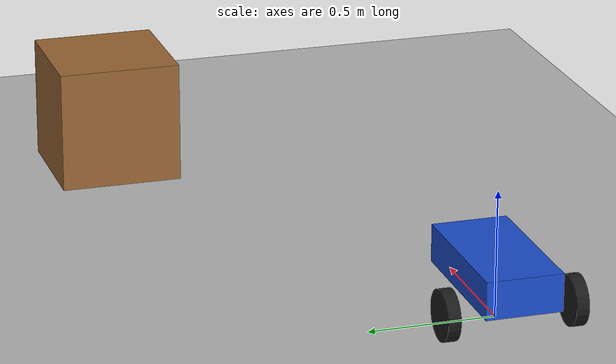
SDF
<?xml version="1.0"?>
<sdf version="1.9">
  <world name="depot">
    <physics name="default_physics" type="ode">
      <max_step_size>0.004</max_step_size>
      <real_time_factor>1.0</real_time_factor>
    </physics>
    <plugin filename="gz-sim-physics-system" name="gz::sim::systems::Physics"/>
    <plugin filename="gz-sim-user-commands-system" name="gz::sim::systems::UserCommands"/>
    <plugin filename="gz-sim-scene-broadcaster-system" name="gz::sim::systems::SceneBroadcaster"/>

    <light type="directional" name="sun">
      <cast_shadows>true</cast_shadows>
      <pose>0 0 10 0 0 0</pose>
      <diffuse>0.8 0.8 0.8 1</diffuse>
      <direction>-0.5 0.1 -0.9</direction>
    </light>

    <model name="ground_plane">
      <static>true</static>
      <link name="link">
        <collision name="collision">
          <geometry><plane><normal>0 0 1</normal><size>100 100</size></plane></geometry>
        </collision>
        <visual name="visual">
          <geometry><plane><normal>0 0 1</normal><size>100 100</size></plane></geometry>
          <material><ambient>0.7 0.7 0.7 1</ambient><diffuse>0.7 0.7 0.7 1</diffuse></material>
        </visual>
      </link>
    </model>

    <model name="crate">
      <static>true</static>
      <pose>2.0 1.0 0.25 0 0 0</pose>
      <link name="link">
        <collision name="collision">
          <geometry><box><size>0.5 0.5 0.5</size></box></geometry>
        </collision>
        <visual name="visual">
          <geometry><box><size>0.5 0.5 0.5</size></box></geometry>
          <material><ambient>0.6 0.4 0.2 1</ambient><diffuse>0.6 0.4 0.2 1</diffuse></material>
        </visual>
      </link>
    </model>

    <model name="ars_bot">
      <pose>0 0 0 0 0 0</pose>

      <link name="base_link">
        <pose>0 0 0.2 0 0 0</pose>
        <inertial>
          <mass>5.0</mass>
          <inertia>
            <ixx>0.05</ixx><iyy>0.12</iyy><izz>0.15</izz>
            <ixy>0</ixy><ixz>0</ixz><iyz>0</iyz>
          </inertia>
        </inertial>
        <collision name="collision">
          <geometry><box><size>0.6 0.3 0.15</size></box></geometry>
        </collision>
        <visual name="visual">
          <geometry><box><size>0.6 0.3 0.15</size></box></geometry>
          <material><ambient>0.1 0.3 0.8 1</ambient><diffuse>0.1 0.3 0.8 1</diffuse></material>
        </visual>
      </link>

      <link name="left_wheel">
        <pose>-0.15 0.25 0.1 -1.5707 0 0</pose>
        <inertial>
          <mass>0.5</mass>
          <inertia>
            <ixx>0.002</ixx><iyy>0.002</iyy><izz>0.0025</izz>
            <ixy>0</ixy><ixz>0</ixz><iyz>0</iyz>
          </inertia>
        </inertial>
        <collision name="collision">
          <geometry><cylinder><radius>0.1</radius><length>0.05</length></cylinder></geometry>
        </collision>
        <visual name="visual">
          <geometry><cylinder><radius>0.1</radius><length>0.05</length></cylinder></geometry>
          <material><ambient>0.1 0.1 0.1 1</ambient><diffuse>0.1 0.1 0.1 1</diffuse></material>
        </visual>
      </link>

      <link name="right_wheel">
        <pose>-0.15 -0.25 0.1 -1.5707 0 0</pose>
        <inertial>
          <mass>0.5</mass>
          <inertia>
            <ixx>0.002</ixx><iyy>0.002</iyy><izz>0.0025</izz>
            <ixy>0</ixy><ixz>0</ixz><iyz>0</iyz>
          </inertia>
        </inertial>
        <collision name="collision">
          <geometry><cylinder><radius>0.1</radius><length>0.05</length></cylinder></geometry>
        </collision>
        <visual name="visual">
          <geometry><cylinder><radius>0.1</radius><length>0.05</length></cylinder></geometry>
          <material><ambient>0.1 0.1 0.1 1</ambient><diffuse>0.1 0.1 0.1 1</diffuse></material>
        </visual>
      </link>

      <link name="caster">
        <pose>0.2 0 0.05 0 0 0</pose>
        <inertial>
          <mass>0.2</mass>
          <inertia>
            <ixx>0.0004</ixx><iyy>0.0004</iyy><izz>0.0004</izz>
            <ixy>0</ixy><ixz>0</ixz><iyz>0</iyz>
          </inertia>
        </inertial>
        <collision name="collision">
          <geometry><sphere><radius>0.05</radius></sphere></geometry>
          <surface>
            <friction><ode><mu>0.0</mu><mu2>0.0</mu2></ode></friction>
          </surface>
        </collision>
        <visual name="visual">
          <geometry><sphere><radius>0.05</radius></sphere></geometry>
          <material><ambient>0.3 0.3 0.3 1</ambient><diffuse>0.3 0.3 0.3 1</diffuse></material>
        </visual>
      </link>

      <joint name="left_wheel_joint" type="revolute">
        <parent>base_link</parent>
        <child>left_wheel</child>
        <axis>
          <xyz>0 0 1</xyz>
          <limit><lower>-1.79769e308</lower><upper>1.79769e308</upper></limit>
        </axis>
      </joint>

      <joint name="right_wheel_joint" type="revolute">
        <parent>base_link</parent>
        <child>right_wheel</child>
        <axis>
          <xyz>0 0 1</xyz>
          <limit><lower>-1.79769e308</lower><upper>1.79769e308</upper></limit>
        </axis>
      </joint>

      <joint name="caster_joint" type="ball">
        <parent>base_link</parent>
        <child>caster</child>
      </joint>

      <plugin filename="gz-sim-diff-drive-system" name="gz::sim::systems::DiffDrive">
        <left_joint>left_wheel_joint</left_joint>
        <right_joint>right_wheel_joint</right_joint>
        <wheel_separation>0.5</wheel_separation>
        <wheel_radius>0.1</wheel_radius>
        <topic>cmd_vel</topic>
        <max_linear_acceleration>1.0</max_linear_acceleration>
        <max_angular_acceleration>2.0</max_angular_acceleration>
      </plugin>

      <plugin filename="gz-sim-joint-state-publisher-system"
              name="gz::sim::systems::JointStatePublisher">
        <joint_name>left_wheel_joint</joint_name>
        <joint_name>right_wheel_joint</joint_name>
      </plugin>
    </model>
  </world>
</sdf>
